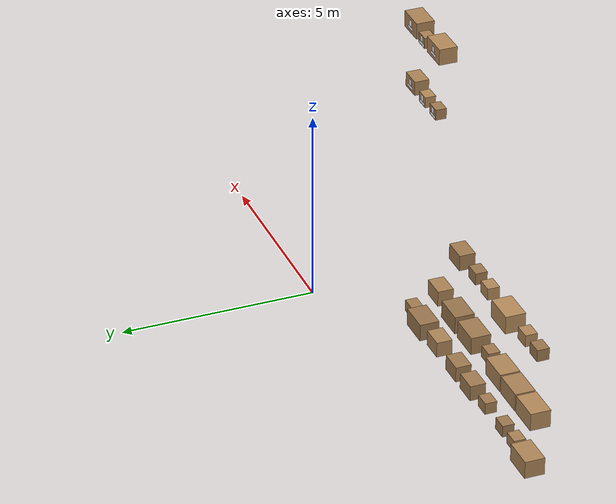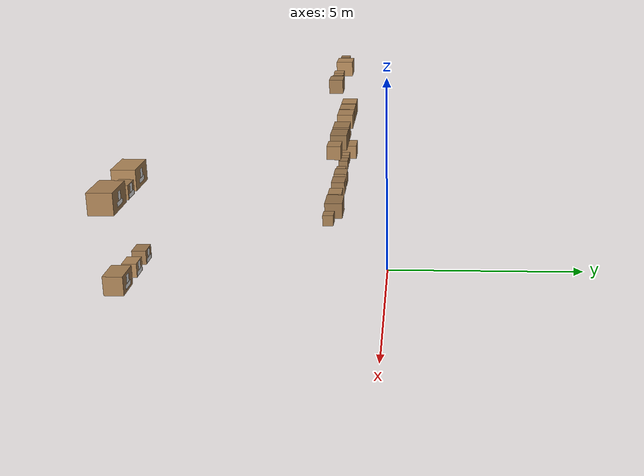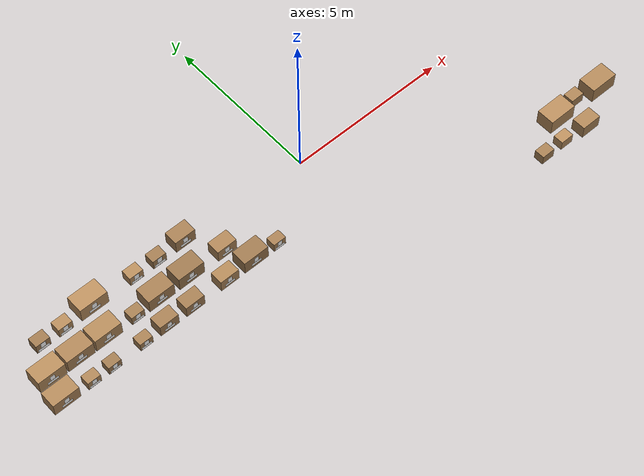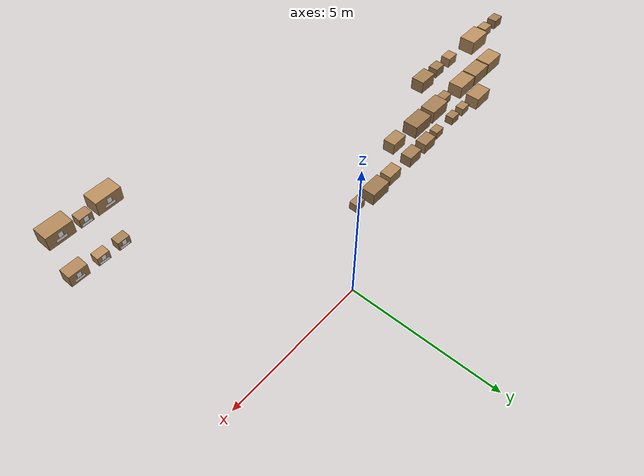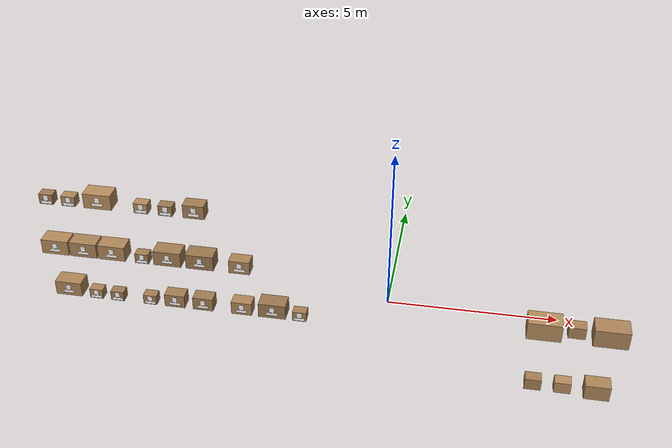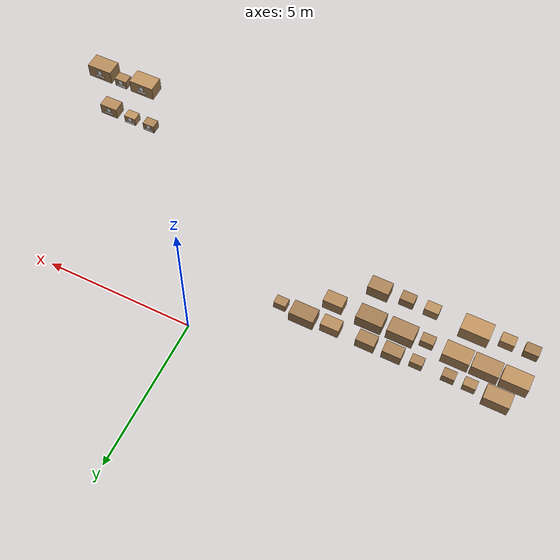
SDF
<sdf version="1.9">
 <world name="warehouse">
  <model name="inventory">
   <static>true</static>
   <link name="box_A_06_2_0">
    <visual name="body">
     <pose>4.05 -5.07 2 0 0 0</pose>
     <geometry><box><size>0.4 0.3 0.3</size></box></geometry>
     <material>
      <ambient>0.319156 0.244061 0.159578 1</ambient>
      <diffuse>0.638313 0.488122 0.319156 1</diffuse>
      <specular>0.05 0.05 0.05 1</specular>
      <pbr><metal><metalness>0.0</metalness><roughness>0.9</roughness></metal></pbr>
     </material>
    </visual>
    <collision name="body_c">
     <pose>4.05 -5.07 2 0 0 0</pose>
     <geometry><box><size>0.4 0.3 0.3</size></box></geometry>
    </collision>
    <visual name="label">
     <pose>4.05 -4.916 2.05 1.5708 0 3.14159</pose>
     <geometry>
      <mesh><uri>model://warehouse_assets/meshes/label_quad.obj</uri><scale>0.14 0.17 1</scale></mesh>
     </geometry>
     <material>
      <ambient>1 1 1 1</ambient>
      <diffuse>1 1 1 1</diffuse>
      <specular>0 0 0 1</specular>
      <pbr>
       <metal>
        <albedo_map>model://warehouse_assets/materials/textures/box_A0620.png</albedo_map>
        <metalness>0.0</metalness>
        <roughness>1.0</roughness>
       </metal>
      </pbr>
     </material>
    </visual>
    <visual name="placard">
     <pose>4.05 -4.916 1.91 1.5708 0 3.14159</pose>
     <geometry>
      <mesh><uri>model://warehouse_assets/meshes/label_quad.obj</uri><scale>0.32 0.09 1</scale></mesh>
     </geometry>
     <material>
      <ambient>1 1 1 1</ambient>
      <diffuse>1 1 1 1</diffuse>
      <specular>0 0 0 1</specular>
      <pbr>
       <metal>
        <albedo_map>model://warehouse_assets/materials/textures/placard_A0620.png</albedo_map>
        <metalness>0.0</metalness>
        <roughness>1.0</roughness>
       </metal>
      </pbr>
     </material>
    </visual>
   </link>
   <link name="box_A_06_2_1">
    <visual name="body">
     <pose>4.75 -5.07 2 0 0 0</pose>
     <geometry><box><size>0.4 0.3 0.3</size></box></geometry>
     <material>
      <ambient>0.356358 0.272509 0.178179 1</ambient>
      <diffuse>0.712716 0.545018 0.356358 1</diffuse>
      <specular>0.05 0.05 0.05 1</specular>
      <pbr><metal><metalness>0.0</metalness><roughness>0.9</roughness></metal></pbr>
     </material>
    </visual>
    <collision name="body_c">
     <pose>4.75 -5.07 2 0 0 0</pose>
     <geometry><box><size>0.4 0.3 0.3</size></box></geometry>
    </collision>
    <visual name="label">
     <pose>4.75 -4.916 2.05 1.5708 0 3.14159</pose>
     <geometry>
      <mesh><uri>model://warehouse_assets/meshes/label_quad.obj</uri><scale>0.14 0.17 1</scale></mesh>
     </geometry>
     <material>
      <ambient>1 1 1 1</ambient>
      <diffuse>1 1 1 1</diffuse>
      <specular>0 0 0 1</specular>
      <pbr>
       <metal>
        <albedo_map>model://warehouse_assets/materials/textures/box_A0621.png</albedo_map>
        <metalness>0.0</metalness>
        <roughness>1.0</roughness>
       </metal>
      </pbr>
     </material>
    </visual>
    <visual name="placard">
     <pose>4.75 -4.916 1.91 1.5708 0 3.14159</pose>
     <geometry>
      <mesh><uri>model://warehouse_assets/meshes/label_quad.obj</uri><scale>0.32 0.09 1</scale></mesh>
     </geometry>
     <material>
      <ambient>1 1 1 1</ambient>
      <diffuse>1 1 1 1</diffuse>
      <specular>0 0 0 1</specular>
      <pbr>
       <metal>
        <albedo_map>model://warehouse_assets/materials/textures/placard_A0621.png</albedo_map>
        <metalness>0.0</metalness>
        <roughness>1.0</roughness>
       </metal>
      </pbr>
     </material>
    </visual>
   </link>
   <link name="box_A_06_2_2">
    <visual name="body">
     <pose>5.55 -5.12 2.05 0 0 0</pose>
     <geometry><box><size>0.6 0.4 0.4</size></box></geometry>
     <material>
      <ambient>0.337333 0.25796 0.168666 1</ambient>
      <diffuse>0.674666 0.515921 0.337333 1</diffuse>
      <specular>0.05 0.05 0.05 1</specular>
      <pbr><metal><metalness>0.0</metalness><roughness>0.9</roughness></metal></pbr>
     </material>
    </visual>
    <collision name="body_c">
     <pose>5.55 -5.12 2.05 0 0 0</pose>
     <geometry><box><size>0.6 0.4 0.4</size></box></geometry>
    </collision>
    <visual name="label">
     <pose>5.55 -4.916 2.1 1.5708 0 3.14159</pose>
     <geometry>
      <mesh><uri>model://warehouse_assets/meshes/label_quad.obj</uri><scale>0.14 0.17 1</scale></mesh>
     </geometry>
     <material>
      <ambient>1 1 1 1</ambient>
      <diffuse>1 1 1 1</diffuse>
      <specular>0 0 0 1</specular>
      <pbr>
       <metal>
        <albedo_map>model://warehouse_assets/materials/textures/box_A0622.png</albedo_map>
        <metalness>0.0</metalness>
        <roughness>1.0</roughness>
       </metal>
      </pbr>
     </material>
    </visual>
    <visual name="placard">
     <pose>5.55 -4.916 1.96 1.5708 0 3.14159</pose>
     <geometry>
      <mesh><uri>model://warehouse_assets/meshes/label_quad.obj</uri><scale>0.32 0.09 1</scale></mesh>
     </geometry>
     <material>
      <ambient>1 1 1 1</ambient>
      <diffuse>1 1 1 1</diffuse>
      <specular>0 0 0 1</specular>
      <pbr>
       <metal>
        <albedo_map>model://warehouse_assets/materials/textures/placard_A0622.png</albedo_map>
        <metalness>0.0</metalness>
        <roughness>1.0</roughness>
       </metal>
      </pbr>
     </material>
    </visual>
   </link>
   <link name="box_A_06_3_0">
    <visual name="body">
     <pose>4.1 -5.17 3.775 0 0 0</pose>
     <geometry><box><size>0.8 0.5 0.45</size></box></geometry>
     <material>
      <ambient>0.354734 0.271267 0.177367 1</ambient>
      <diffuse>0.709467 0.542534 0.354734 1</diffuse>
      <specular>0.05 0.05 0.05 1</specular>
      <pbr><metal><metalness>0.0</metalness><roughness>0.9</roughness></metal></pbr>
     </material>
    </visual>
    <collision name="body_c">
     <pose>4.1 -5.17 3.775 0 0 0</pose>
     <geometry><box><size>0.8 0.5 0.45</size></box></geometry>
    </collision>
    <visual name="label">
     <pose>4.1 -4.916 3.825 1.5708 0 3.14159</pose>
     <geometry>
      <mesh><uri>model://warehouse_assets/meshes/label_quad.obj</uri><scale>0.14 0.17 1</scale></mesh>
     </geometry>
     <material>
      <ambient>1 1 1 1</ambient>
      <diffuse>1 1 1 1</diffuse>
      <specular>0 0 0 1</specular>
      <pbr>
       <metal>
        <albedo_map>model://warehouse_assets/materials/textures/box_A0630.png</albedo_map>
        <metalness>0.0</metalness>
        <roughness>1.0</roughness>
       </metal>
      </pbr>
     </material>
    </visual>
    <visual name="placard">
     <pose>4.1 -4.916 3.685 1.5708 0 3.14159</pose>
     <geometry>
      <mesh><uri>model://warehouse_assets/meshes/label_quad.obj</uri><scale>0.32 0.09 1</scale></mesh>
     </geometry>
     <material>
      <ambient>1 1 1 1</ambient>
      <diffuse>1 1 1 1</diffuse>
      <specular>0 0 0 1</specular>
      <pbr>
       <metal>
        <albedo_map>model://warehouse_assets/materials/textures/placard_A0630.png</albedo_map>
        <metalness>0.0</metalness>
        <roughness>1.0</roughness>
       </metal>
      </pbr>
     </material>
    </visual>
   </link>
   <link name="box_A_06_3_1">
    <visual name="body">
     <pose>4.85 -5.07 3.7 0 0 0</pose>
     <geometry><box><size>0.4 0.3 0.3</size></box></geometry>
     <material>
      <ambient>0.330614 0.252822 0.165307 1</ambient>
      <diffuse>0.661228 0.505645 0.330614 1</diffuse>
      <specular>0.05 0.05 0.05 1</specular>
      <pbr><metal><metalness>0.0</metalness><roughness>0.9</roughness></metal></pbr>
     </material>
    </visual>
    <collision name="body_c">
     <pose>4.85 -5.07 3.7 0 0 0</pose>
     <geometry><box><size>0.4 0.3 0.3</size></box></geometry>
    </collision>
    <visual name="label">
     <pose>4.85 -4.916 3.75 1.5708 0 3.14159</pose>
     <geometry>
      <mesh><uri>model://warehouse_assets/meshes/label_quad.obj</uri><scale>0.14 0.17 1</scale></mesh>
     </geometry>
     <material>
      <ambient>1 1 1 1</ambient>
      <diffuse>1 1 1 1</diffuse>
      <specular>0 0 0 1</specular>
      <pbr>
       <metal>
        <albedo_map>model://warehouse_assets/materials/textures/box_A0631.png</albedo_map>
        <metalness>0.0</metalness>
        <roughness>1.0</roughness>
       </metal>
      </pbr>
     </material>
    </visual>
    <visual name="placard">
     <pose>4.85 -4.916 3.61 1.5708 0 3.14159</pose>
     <geometry>
      <mesh><uri>model://warehouse_assets/meshes/label_quad.obj</uri><scale>0.32 0.09 1</scale></mesh>
     </geometry>
     <material>
      <ambient>1 1 1 1</ambient>
      <diffuse>1 1 1 1</diffuse>
      <specular>0 0 0 1</specular>
      <pbr>
       <metal>
        <albedo_map>model://warehouse_assets/materials/textures/placard_A0631.png</albedo_map>
        <metalness>0.0</metalness>
        <roughness>1.0</roughness>
       </metal>
      </pbr>
     </material>
    </visual>
   </link>
   <link name="box_A_06_3_2">
    <visual name="body">
     <pose>5.6 -5.17 3.775 0 0 0</pose>
     <geometry><box><size>0.8 0.5 0.45</size></box></geometry>
     <material>
      <ambient>0.339314 0.259476 0.169657 1</ambient>
      <diffuse>0.678629 0.518951 0.339314 1</diffuse>
      <specular>0.05 0.05 0.05 1</specular>
      <pbr><metal><metalness>0.0</metalness><roughness>0.9</roughness></metal></pbr>
     </material>
    </visual>
    <collision name="body_c">
     <pose>5.6 -5.17 3.775 0 0 0</pose>
     <geometry><box><size>0.8 0.5 0.45</size></box></geometry>
    </collision>
    <visual name="label">
     <pose>5.6 -4.916 3.825 1.5708 0 3.14159</pose>
     <geometry>
      <mesh><uri>model://warehouse_assets/meshes/label_quad.obj</uri><scale>0.14 0.17 1</scale></mesh>
     </geometry>
     <material>
      <ambient>1 1 1 1</ambient>
      <diffuse>1 1 1 1</diffuse>
      <specular>0 0 0 1</specular>
      <pbr>
       <metal>
        <albedo_map>model://warehouse_assets/materials/textures/box_A0632.png</albedo_map>
        <metalness>0.0</metalness>
        <roughness>1.0</roughness>
       </metal>
      </pbr>
     </material>
    </visual>
    <visual name="placard">
     <pose>5.6 -4.916 3.685 1.5708 0 3.14159</pose>
     <geometry>
      <mesh><uri>model://warehouse_assets/meshes/label_quad.obj</uri><scale>0.32 0.09 1</scale></mesh>
     </geometry>
     <material>
      <ambient>1 1 1 1</ambient>
      <diffuse>1 1 1 1</diffuse>
      <specular>0 0 0 1</specular>
      <pbr>
       <metal>
        <albedo_map>model://warehouse_assets/materials/textures/placard_A0632.png</albedo_map>
        <metalness>0.0</metalness>
        <roughness>1.0</roughness>
       </metal>
      </pbr>
     </material>
    </visual>
   </link>
   <link name="box_B_01_1_0">
    <visual name="body">
     <pose>-9.3 -1.63 0.625 0 0 0</pose>
     <geometry><box><size>0.8 0.5 0.45</size></box></geometry>
     <material>
      <ambient>0.341833 0.261401 0.170916 1</ambient>
      <diffuse>0.683665 0.522803 0.341833 1</diffuse>
      <specular>0.05 0.05 0.05 1</specular>
      <pbr><metal><metalness>0.0</metalness><roughness>0.9</roughness></metal></pbr>
     </material>
    </visual>
    <collision name="body_c">
     <pose>-9.3 -1.63 0.625 0 0 0</pose>
     <geometry><box><size>0.8 0.5 0.45</size></box></geometry>
    </collision>
    <visual name="label">
     <pose>-9.3 -1.884 0.675 1.5708 0 0</pose>
     <geometry>
      <mesh><uri>model://warehouse_assets/meshes/label_quad.obj</uri><scale>0.14 0.17 1</scale></mesh>
     </geometry>
     <material>
      <ambient>1 1 1 1</ambient>
      <diffuse>1 1 1 1</diffuse>
      <specular>0 0 0 1</specular>
      <pbr>
       <metal>
        <albedo_map>model://warehouse_assets/materials/textures/box_B0110.png</albedo_map>
        <metalness>0.0</metalness>
        <roughness>1.0</roughness>
       </metal>
      </pbr>
     </material>
    </visual>
    <visual name="placard">
     <pose>-9.3 -1.884 0.535 1.5708 0 0</pose>
     <geometry>
      <mesh><uri>model://warehouse_assets/meshes/label_quad.obj</uri><scale>0.32 0.09 1</scale></mesh>
     </geometry>
     <material>
      <ambient>1 1 1 1</ambient>
      <diffuse>1 1 1 1</diffuse>
      <specular>0 0 0 1</specular>
      <pbr>
       <metal>
        <albedo_map>model://warehouse_assets/materials/textures/placard_B0110.png</albedo_map>
        <metalness>0.0</metalness>
        <roughness>1.0</roughness>
       </metal>
      </pbr>
     </material>
    </visual>
   </link>
   <link name="box_B_01_1_1">
    <visual name="body">
     <pose>-8.45 -1.73 0.55 0 0 0</pose>
     <geometry><box><size>0.4 0.3 0.3</size></box></geometry>
     <material>
      <ambient>0.333604 0.255109 0.166802 1</ambient>
      <diffuse>0.667208 0.510218 0.333604 1</diffuse>
      <specular>0.05 0.05 0.05 1</specular>
      <pbr><metal><metalness>0.0</metalness><roughness>0.9</roughness></metal></pbr>
     </material>
    </visual>
    <collision name="body_c">
     <pose>-8.45 -1.73 0.55 0 0 0</pose>
     <geometry><box><size>0.4 0.3 0.3</size></box></geometry>
    </collision>
    <visual name="label">
     <pose>-8.45 -1.884 0.6 1.5708 0 0</pose>
     <geometry>
      <mesh><uri>model://warehouse_assets/meshes/label_quad.obj</uri><scale>0.14 0.17 1</scale></mesh>
     </geometry>
     <material>
      <ambient>1 1 1 1</ambient>
      <diffuse>1 1 1 1</diffuse>
      <specular>0 0 0 1</specular>
      <pbr>
       <metal>
        <albedo_map>model://warehouse_assets/materials/textures/box_B0111.png</albedo_map>
        <metalness>0.0</metalness>
        <roughness>1.0</roughness>
       </metal>
      </pbr>
     </material>
    </visual>
    <visual name="placard">
     <pose>-8.45 -1.884 0.46 1.5708 0 0</pose>
     <geometry>
      <mesh><uri>model://warehouse_assets/meshes/label_quad.obj</uri><scale>0.32 0.09 1</scale></mesh>
     </geometry>
     <material>
      <ambient>1 1 1 1</ambient>
      <diffuse>1 1 1 1</diffuse>
      <specular>0 0 0 1</specular>
      <pbr>
       <metal>
        <albedo_map>model://warehouse_assets/materials/textures/placard_B0111.png</albedo_map>
        <metalness>0.0</metalness>
        <roughness>1.0</roughness>
       </metal>
      </pbr>
     </material>
    </visual>
   </link>
   <link name="box_B_01_1_2">
    <visual name="body">
     <pose>-7.8 -1.73 0.55 0 0 0</pose>
     <geometry><box><size>0.4 0.3 0.3</size></box></geometry>
     <material>
      <ambient>0.307673 0.235279 0.153836 1</ambient>
      <diffuse>0.615345 0.470558 0.307673 1</diffuse>
      <specular>0.05 0.05 0.05 1</specular>
      <pbr><metal><metalness>0.0</metalness><roughness>0.9</roughness></metal></pbr>
     </material>
    </visual>
    <collision name="body_c">
     <pose>-7.8 -1.73 0.55 0 0 0</pose>
     <geometry><box><size>0.4 0.3 0.3</size></box></geometry>
    </collision>
    <visual name="label">
     <pose>-7.8 -1.884 0.6 1.5708 0 0</pose>
     <geometry>
      <mesh><uri>model://warehouse_assets/meshes/label_quad.obj</uri><scale>0.14 0.17 1</scale></mesh>
     </geometry>
     <material>
      <ambient>1 1 1 1</ambient>
      <diffuse>1 1 1 1</diffuse>
      <specular>0 0 0 1</specular>
      <pbr>
       <metal>
        <albedo_map>model://warehouse_assets/materials/textures/box_B0112.png</albedo_map>
        <metalness>0.0</metalness>
        <roughness>1.0</roughness>
       </metal>
      </pbr>
     </material>
    </visual>
    <visual name="placard">
     <pose>-7.8 -1.884 0.46 1.5708 0 0</pose>
     <geometry>
      <mesh><uri>model://warehouse_assets/meshes/label_quad.obj</uri><scale>0.32 0.09 1</scale></mesh>
     </geometry>
     <material>
      <ambient>1 1 1 1</ambient>
      <diffuse>1 1 1 1</diffuse>
      <specular>0 0 0 1</specular>
      <pbr>
       <metal>
        <albedo_map>model://warehouse_assets/materials/textures/placard_B0112.png</albedo_map>
        <metalness>0.0</metalness>
        <roughness>1.0</roughness>
       </metal>
      </pbr>
     </material>
    </visual>
   </link>
   <link name="box_B_01_2_0">
    <visual name="body">
     <pose>-9.5 -1.63 2.075 0 0 0</pose>
     <geometry><box><size>0.8 0.5 0.45</size></box></geometry>
     <material>
      <ambient>0.352524 0.269577 0.176262 1</ambient>
      <diffuse>0.705048 0.539155 0.352524 1</diffuse>
      <specular>0.05 0.05 0.05 1</specular>
      <pbr><metal><metalness>0.0</metalness><roughness>0.9</roughness></metal></pbr>
     </material>
    </visual>
    <collision name="body_c">
     <pose>-9.5 -1.63 2.075 0 0 0</pose>
     <geometry><box><size>0.8 0.5 0.45</size></box></geometry>
    </collision>
    <visual name="label">
     <pose>-9.5 -1.884 2.125 1.5708 0 0</pose>
     <geometry>
      <mesh><uri>model://warehouse_assets/meshes/label_quad.obj</uri><scale>0.14 0.17 1</scale></mesh>
     </geometry>
     <material>
      <ambient>1 1 1 1</ambient>
      <diffuse>1 1 1 1</diffuse>
      <specular>0 0 0 1</specular>
      <pbr>
       <metal>
        <albedo_map>model://warehouse_assets/materials/textures/box_B0120.png</albedo_map>
        <metalness>0.0</metalness>
        <roughness>1.0</roughness>
       </metal>
      </pbr>
     </material>
    </visual>
    <visual name="placard">
     <pose>-9.5 -1.884 1.985 1.5708 0 0</pose>
     <geometry>
      <mesh><uri>model://warehouse_assets/meshes/label_quad.obj</uri><scale>0.32 0.09 1</scale></mesh>
     </geometry>
     <material>
      <ambient>1 1 1 1</ambient>
      <diffuse>1 1 1 1</diffuse>
      <specular>0 0 0 1</specular>
      <pbr>
       <metal>
        <albedo_map>model://warehouse_assets/materials/textures/placard_B0120.png</albedo_map>
        <metalness>0.0</metalness>
        <roughness>1.0</roughness>
       </metal>
      </pbr>
     </material>
    </visual>
   </link>
   <link name="box_B_01_2_1">
    <visual name="body">
     <pose>-8.65 -1.63 2.075 0 0 0</pose>
     <geometry><box><size>0.8 0.5 0.45</size></box></geometry>
     <material>
      <ambient>0.334331 0.255665 0.167165 1</ambient>
      <diffuse>0.668661 0.511329 0.334331 1</diffuse>
      <specular>0.05 0.05 0.05 1</specular>
      <pbr><metal><metalness>0.0</metalness><roughness>0.9</roughness></metal></pbr>
     </material>
    </visual>
    <collision name="body_c">
     <pose>-8.65 -1.63 2.075 0 0 0</pose>
     <geometry><box><size>0.8 0.5 0.45</size></box></geometry>
    </collision>
    <visual name="label">
     <pose>-8.65 -1.884 2.125 1.5708 0 0</pose>
     <geometry>
      <mesh><uri>model://warehouse_assets/meshes/label_quad.obj</uri><scale>0.14 0.17 1</scale></mesh>
     </geometry>
     <material>
      <ambient>1 1 1 1</ambient>
      <diffuse>1 1 1 1</diffuse>
      <specular>0 0 0 1</specular>
      <pbr>
       <metal>
        <albedo_map>model://warehouse_assets/materials/textures/box_B0121.png</albedo_map>
        <metalness>0.0</metalness>
        <roughness>1.0</roughness>
       </metal>
      </pbr>
     </material>
    </visual>
    <visual name="placard">
     <pose>-8.65 -1.884 1.985 1.5708 0 0</pose>
     <geometry>
      <mesh><uri>model://warehouse_assets/meshes/label_quad.obj</uri><scale>0.32 0.09 1</scale></mesh>
     </geometry>
     <material>
      <ambient>1 1 1 1</ambient>
      <diffuse>1 1 1 1</diffuse>
      <specular>0 0 0 1</specular>
      <pbr>
       <metal>
        <albedo_map>model://warehouse_assets/materials/textures/placard_B0121.png</albedo_map>
        <metalness>0.0</metalness>
        <roughness>1.0</roughness>
       </metal>
      </pbr>
     </material>
    </visual>
   </link>
   <link name="box_B_01_2_2">
    <visual name="body">
     <pose>-7.8 -1.63 2.075 0 0 0</pose>
     <geometry><box><size>0.8 0.5 0.45</size></box></geometry>
     <material>
      <ambient>0.343984 0.263047 0.171992 1</ambient>
      <diffuse>0.687968 0.526093 0.343984 1</diffuse>
      <specular>0.05 0.05 0.05 1</specular>
      <pbr><metal><metalness>0.0</metalness><roughness>0.9</roughness></metal></pbr>
     </material>
    </visual>
    <collision name="body_c">
     <pose>-7.8 -1.63 2.075 0 0 0</pose>
     <geometry><box><size>0.8 0.5 0.45</size></box></geometry>
    </collision>
    <visual name="label">
     <pose>-7.8 -1.884 2.125 1.5708 0 0</pose>
     <geometry>
      <mesh><uri>model://warehouse_assets/meshes/label_quad.obj</uri><scale>0.14 0.17 1</scale></mesh>
     </geometry>
     <material>
      <ambient>1 1 1 1</ambient>
      <diffuse>1 1 1 1</diffuse>
      <specular>0 0 0 1</specular>
      <pbr>
       <metal>
        <albedo_map>model://warehouse_assets/materials/textures/box_B0122.png</albedo_map>
        <metalness>0.0</metalness>
        <roughness>1.0</roughness>
       </metal>
      </pbr>
     </material>
    </visual>
    <visual name="placard">
     <pose>-7.8 -1.884 1.985 1.5708 0 0</pose>
     <geometry>
      <mesh><uri>model://warehouse_assets/meshes/label_quad.obj</uri><scale>0.32 0.09 1</scale></mesh>
     </geometry>
     <material>
      <ambient>1 1 1 1</ambient>
      <diffuse>1 1 1 1</diffuse>
      <specular>0 0 0 1</specular>
      <pbr>
       <metal>
        <albedo_map>model://warehouse_assets/materials/textures/placard_B0122.png</albedo_map>
        <metalness>0.0</metalness>
        <roughness>1.0</roughness>
       </metal>
      </pbr>
     </material>
    </visual>
   </link>
   <link name="box_B_01_3_0">
    <visual name="body">
     <pose>-9.5 -1.73 3.7 0 0 0</pose>
     <geometry><box><size>0.4 0.3 0.3</size></box></geometry>
     <material>
      <ambient>0.306503 0.234384 0.153251 1</ambient>
      <diffuse>0.613005 0.468769 0.306503 1</diffuse>
      <specular>0.05 0.05 0.05 1</specular>
      <pbr><metal><metalness>0.0</metalness><roughness>0.9</roughness></metal></pbr>
     </material>
    </visual>
    <collision name="body_c">
     <pose>-9.5 -1.73 3.7 0 0 0</pose>
     <geometry><box><size>0.4 0.3 0.3</size></box></geometry>
    </collision>
    <visual name="label">
     <pose>-9.5 -1.884 3.75 1.5708 0 0</pose>
     <geometry>
      <mesh><uri>model://warehouse_assets/meshes/label_quad.obj</uri><scale>0.14 0.17 1</scale></mesh>
     </geometry>
     <material>
      <ambient>1 1 1 1</ambient>
      <diffuse>1 1 1 1</diffuse>
      <specular>0 0 0 1</specular>
      <pbr>
       <metal>
        <albedo_map>model://warehouse_assets/materials/textures/box_B0130.png</albedo_map>
        <metalness>0.0</metalness>
        <roughness>1.0</roughness>
       </metal>
      </pbr>
     </material>
    </visual>
    <visual name="placard">
     <pose>-9.5 -1.884 3.61 1.5708 0 0</pose>
     <geometry>
      <mesh><uri>model://warehouse_assets/meshes/label_quad.obj</uri><scale>0.32 0.09 1</scale></mesh>
     </geometry>
     <material>
      <ambient>1 1 1 1</ambient>
      <diffuse>1 1 1 1</diffuse>
      <specular>0 0 0 1</specular>
      <pbr>
       <metal>
        <albedo_map>model://warehouse_assets/materials/textures/placard_B0130.png</albedo_map>
        <metalness>0.0</metalness>
        <roughness>1.0</roughness>
       </metal>
      </pbr>
     </material>
    </visual>
   </link>
   <link name="box_B_01_3_1">
    <visual name="body">
     <pose>-8.85 -1.73 3.7 0 0 0</pose>
     <geometry><box><size>0.4 0.3 0.3</size></box></geometry>
     <material>
      <ambient>0.347817 0.265977 0.173908 1</ambient>
      <diffuse>0.695633 0.531955 0.347817 1</diffuse>
      <specular>0.05 0.05 0.05 1</specular>
      <pbr><metal><metalness>0.0</metalness><roughness>0.9</roughness></metal></pbr>
     </material>
    </visual>
    <collision name="body_c">
     <pose>-8.85 -1.73 3.7 0 0 0</pose>
     <geometry><box><size>0.4 0.3 0.3</size></box></geometry>
    </collision>
    <visual name="label">
     <pose>-8.85 -1.884 3.75 1.5708 0 0</pose>
     <geometry>
      <mesh><uri>model://warehouse_assets/meshes/label_quad.obj</uri><scale>0.14 0.17 1</scale></mesh>
     </geometry>
     <material>
      <ambient>1 1 1 1</ambient>
      <diffuse>1 1 1 1</diffuse>
      <specular>0 0 0 1</specular>
      <pbr>
       <metal>
        <albedo_map>model://warehouse_assets/materials/textures/box_B0131.png</albedo_map>
        <metalness>0.0</metalness>
        <roughness>1.0</roughness>
       </metal>
      </pbr>
     </material>
    </visual>
    <visual name="placard">
     <pose>-8.85 -1.884 3.61 1.5708 0 0</pose>
     <geometry>
      <mesh><uri>model://warehouse_assets/meshes/label_quad.obj</uri><scale>0.32 0.09 1</scale></mesh>
     </geometry>
     <material>
      <ambient>1 1 1 1</ambient>
      <diffuse>1 1 1 1</diffuse>
      <specular>0 0 0 1</specular>
      <pbr>
       <metal>
        <albedo_map>model://warehouse_assets/materials/textures/placard_B0131.png</albedo_map>
        <metalness>0.0</metalness>
        <roughness>1.0</roughness>
       </metal>
      </pbr>
     </material>
    </visual>
   </link>
   <link name="box_B_01_3_2">
    <visual name="body">
     <pose>-8 -1.63 3.775 0 0 0</pose>
     <geometry><box><size>0.8 0.5 0.45</size></box></geometry>
     <material>
      <ambient>0.359392 0.27483 0.179696 1</ambient>
      <diffuse>0.718785 0.549659 0.359392 1</diffuse>
      <specular>0.05 0.05 0.05 1</specular>
      <pbr><metal><metalness>0.0</metalness><roughness>0.9</roughness></metal></pbr>
     </material>
    </visual>
    <collision name="body_c">
     <pose>-8 -1.63 3.775 0 0 0</pose>
     <geometry><box><size>0.8 0.5 0.45</size></box></geometry>
    </collision>
    <visual name="label">
     <pose>-8 -1.884 3.825 1.5708 0 0</pose>
     <geometry>
      <mesh><uri>model://warehouse_assets/meshes/label_quad.obj</uri><scale>0.14 0.17 1</scale></mesh>
     </geometry>
     <material>
      <ambient>1 1 1 1</ambient>
      <diffuse>1 1 1 1</diffuse>
      <specular>0 0 0 1</specular>
      <pbr>
       <metal>
        <albedo_map>model://warehouse_assets/materials/textures/box_B0132.png</albedo_map>
        <metalness>0.0</metalness>
        <roughness>1.0</roughness>
       </metal>
      </pbr>
     </material>
    </visual>
    <visual name="placard">
     <pose>-8 -1.884 3.685 1.5708 0 0</pose>
     <geometry>
      <mesh><uri>model://warehouse_assets/meshes/label_quad.obj</uri><scale>0.32 0.09 1</scale></mesh>
     </geometry>
     <material>
      <ambient>1 1 1 1</ambient>
      <diffuse>1 1 1 1</diffuse>
      <specular>0 0 0 1</specular>
      <pbr>
       <metal>
        <albedo_map>model://warehouse_assets/materials/textures/placard_B0132.png</albedo_map>
        <metalness>0.0</metalness>
        <roughness>1.0</roughness>
       </metal>
      </pbr>
     </material>
    </visual>
   </link>
   <link name="box_B_02_1_0">
    <visual name="body">
     <pose>-6.8 -1.73 0.55 0 0 0</pose>
     <geometry><box><size>0.4 0.3 0.3</size></box></geometry>
     <material>
      <ambient>0.319652 0.24444 0.159826 1</ambient>
      <diffuse>0.639304 0.48888 0.319652 1</diffuse>
      <specular>0.05 0.05 0.05 1</specular>
      <pbr><metal><metalness>0.0</metalness><roughness>0.9</roughness></metal></pbr>
     </material>
    </visual>
    <collision name="body_c">
     <pose>-6.8 -1.73 0.55 0 0 0</pose>
     <geometry><box><size>0.4 0.3 0.3</size></box></geometry>
    </collision>
    <visual name="label">
     <pose>-6.8 -1.884 0.6 1.5708 0 0</pose>
     <geometry>
      <mesh><uri>model://warehouse_assets/meshes/label_quad.obj</uri><scale>0.14 0.17 1</scale></mesh>
     </geometry>
     <material>
      <ambient>1 1 1 1</ambient>
      <diffuse>1 1 1 1</diffuse>
      <specular>0 0 0 1</specular>
      <pbr>
       <metal>
        <albedo_map>model://warehouse_assets/materials/textures/box_B0210.png</albedo_map>
        <metalness>0.0</metalness>
        <roughness>1.0</roughness>
       </metal>
      </pbr>
     </material>
    </visual>
    <visual name="placard">
     <pose>-6.8 -1.884 0.46 1.5708 0 0</pose>
     <geometry>
      <mesh><uri>model://warehouse_assets/meshes/label_quad.obj</uri><scale>0.32 0.09 1</scale></mesh>
     </geometry>
     <material>
      <ambient>1 1 1 1</ambient>
      <diffuse>1 1 1 1</diffuse>
      <specular>0 0 0 1</specular>
      <pbr>
       <metal>
        <albedo_map>model://warehouse_assets/materials/textures/placard_B0210.png</albedo_map>
        <metalness>0.0</metalness>
        <roughness>1.0</roughness>
       </metal>
      </pbr>
     </material>
    </visual>
   </link>
   <link name="box_B_02_1_1">
    <visual name="body">
     <pose>-6.05 -1.68 0.6 0 0 0</pose>
     <geometry><box><size>0.6 0.4 0.4</size></box></geometry>
     <material>
      <ambient>0.317145 0.242523 0.158573 1</ambient>
      <diffuse>0.63429 0.485046 0.317145 1</diffuse>
      <specular>0.05 0.05 0.05 1</specular>
      <pbr><metal><metalness>0.0</metalness><roughness>0.9</roughness></metal></pbr>
     </material>
    </visual>
    <collision name="body_c">
     <pose>-6.05 -1.68 0.6 0 0 0</pose>
     <geometry><box><size>0.6 0.4 0.4</size></box></geometry>
    </collision>
    <visual name="label">
     <pose>-6.05 -1.884 0.65 1.5708 0 0</pose>
     <geometry>
      <mesh><uri>model://warehouse_assets/meshes/label_quad.obj</uri><scale>0.14 0.17 1</scale></mesh>
     </geometry>
     <material>
      <ambient>1 1 1 1</ambient>
      <diffuse>1 1 1 1</diffuse>
      <specular>0 0 0 1</specular>
      <pbr>
       <metal>
        <albedo_map>model://warehouse_assets/materials/textures/box_B0211.png</albedo_map>
        <metalness>0.0</metalness>
        <roughness>1.0</roughness>
       </metal>
      </pbr>
     </material>
    </visual>
    <visual name="placard">
     <pose>-6.05 -1.884 0.51 1.5708 0 0</pose>
     <geometry>
      <mesh><uri>model://warehouse_assets/meshes/label_quad.obj</uri><scale>0.32 0.09 1</scale></mesh>
     </geometry>
     <material>
      <ambient>1 1 1 1</ambient>
      <diffuse>1 1 1 1</diffuse>
      <specular>0 0 0 1</specular>
      <pbr>
       <metal>
        <albedo_map>model://warehouse_assets/materials/textures/placard_B0211.png</albedo_map>
        <metalness>0.0</metalness>
        <roughness>1.0</roughness>
       </metal>
      </pbr>
     </material>
    </visual>
   </link>
   <link name="box_B_02_1_2">
    <visual name="body">
     <pose>-5.2 -1.68 0.6 0 0 0</pose>
     <geometry><box><size>0.6 0.4 0.4</size></box></geometry>
     <material>
      <ambient>0.313292 0.239577 0.156646 1</ambient>
      <diffuse>0.626585 0.479153 0.313292 1</diffuse>
      <specular>0.05 0.05 0.05 1</specular>
      <pbr><metal><metalness>0.0</metalness><roughness>0.9</roughness></metal></pbr>
     </material>
    </visual>
    <collision name="body_c">
     <pose>-5.2 -1.68 0.6 0 0 0</pose>
     <geometry><box><size>0.6 0.4 0.4</size></box></geometry>
    </collision>
    <visual name="label">
     <pose>-5.2 -1.884 0.65 1.5708 0 0</pose>
     <geometry>
      <mesh><uri>model://warehouse_assets/meshes/label_quad.obj</uri><scale>0.14 0.17 1</scale></mesh>
     </geometry>
     <material>
      <ambient>1 1 1 1</ambient>
      <diffuse>1 1 1 1</diffuse>
      <specular>0 0 0 1</specular>
      <pbr>
       <metal>
        <albedo_map>model://warehouse_assets/materials/textures/box_B0212.png</albedo_map>
        <metalness>0.0</metalness>
        <roughness>1.0</roughness>
       </metal>
      </pbr>
     </material>
    </visual>
    <visual name="placard">
     <pose>-5.2 -1.884 0.51 1.5708 0 0</pose>
     <geometry>
      <mesh><uri>model://warehouse_assets/meshes/label_quad.obj</uri><scale>0.32 0.09 1</scale></mesh>
     </geometry>
     <material>
      <ambient>1 1 1 1</ambient>
      <diffuse>1 1 1 1</diffuse>
      <specular>0 0 0 1</specular>
      <pbr>
       <metal>
        <albedo_map>model://warehouse_assets/materials/textures/placard_B0212.png</albedo_map>
        <metalness>0.0</metalness>
        <roughness>1.0</roughness>
       </metal>
      </pbr>
     </material>
    </visual>
   </link>
   <link name="box_B_02_2_0">
    <visual name="body">
     <pose>-6.9 -1.73 2 0 0 0</pose>
     <geometry><box><size>0.4 0.3 0.3</size></box></geometry>
     <material>
      <ambient>0.315952 0.24161 0.157976 1</ambient>
      <diffuse>0.631904 0.483221 0.315952 1</diffuse>
      <specular>0.05 0.05 0.05 1</specular>
      <pbr><metal><metalness>0.0</metalness><roughness>0.9</roughness></metal></pbr>
     </material>
    </visual>
    <collision name="body_c">
     <pose>-6.9 -1.73 2 0 0 0</pose>
     <geometry><box><size>0.4 0.3 0.3</size></box></geometry>
    </collision>
    <visual name="label">
     <pose>-6.9 -1.884 2.05 1.5708 0 0</pose>
     <geometry>
      <mesh><uri>model://warehouse_assets/meshes/label_quad.obj</uri><scale>0.14 0.17 1</scale></mesh>
     </geometry>
     <material>
      <ambient>1 1 1 1</ambient>
      <diffuse>1 1 1 1</diffuse>
      <specular>0 0 0 1</specular>
      <pbr>
       <metal>
        <albedo_map>model://warehouse_assets/materials/textures/box_B0220.png</albedo_map>
        <metalness>0.0</metalness>
        <roughness>1.0</roughness>
       </metal>
      </pbr>
     </material>
    </visual>
    <visual name="placard">
     <pose>-6.9 -1.884 1.91 1.5708 0 0</pose>
     <geometry>
      <mesh><uri>model://warehouse_assets/meshes/label_quad.obj</uri><scale>0.32 0.09 1</scale></mesh>
     </geometry>
     <material>
      <ambient>1 1 1 1</ambient>
      <diffuse>1 1 1 1</diffuse>
      <specular>0 0 0 1</specular>
      <pbr>
       <metal>
        <albedo_map>model://warehouse_assets/materials/textures/placard_B0220.png</albedo_map>
        <metalness>0.0</metalness>
        <roughness>1.0</roughness>
       </metal>
      </pbr>
     </material>
    </visual>
   </link>
   <link name="box_B_02_2_1">
    <visual name="body">
     <pose>-6.15 -1.63 2.075 0 0 0</pose>
     <geometry><box><size>0.8 0.5 0.45</size></box></geometry>
     <material>
      <ambient>0.316963 0.242383 0.158481 1</ambient>
      <diffuse>0.633925 0.484766 0.316963 1</diffuse>
      <specular>0.05 0.05 0.05 1</specular>
      <pbr><metal><metalness>0.0</metalness><roughness>0.9</roughness></metal></pbr>
     </material>
    </visual>
    <collision name="body_c">
     <pose>-6.15 -1.63 2.075 0 0 0</pose>
     <geometry><box><size>0.8 0.5 0.45</size></box></geometry>
    </collision>
    <visual name="label">
     <pose>-6.15 -1.884 2.125 1.5708 0 0</pose>
     <geometry>
      <mesh><uri>model://warehouse_assets/meshes/label_quad.obj</uri><scale>0.14 0.17 1</scale></mesh>
     </geometry>
     <material>
      <ambient>1 1 1 1</ambient>
      <diffuse>1 1 1 1</diffuse>
      <specular>0 0 0 1</specular>
      <pbr>
       <metal>
        <albedo_map>model://warehouse_assets/materials/textures/box_B0221.png</albedo_map>
        <metalness>0.0</metalness>
        <roughness>1.0</roughness>
       </metal>
      </pbr>
     </material>
    </visual>
    <visual name="placard">
     <pose>-6.15 -1.884 1.985 1.5708 0 0</pose>
     <geometry>
      <mesh><uri>model://warehouse_assets/meshes/label_quad.obj</uri><scale>0.32 0.09 1</scale></mesh>
     </geometry>
     <material>
      <ambient>1 1 1 1</ambient>
      <diffuse>1 1 1 1</diffuse>
      <specular>0 0 0 1</specular>
      <pbr>
       <metal>
        <albedo_map>model://warehouse_assets/materials/textures/placard_B0221.png</albedo_map>
        <metalness>0.0</metalness>
        <roughness>1.0</roughness>
       </metal>
      </pbr>
     </material>
    </visual>
   </link>
   <link name="box_B_02_2_2">
    <visual name="body">
     <pose>-5.2 -1.63 2.075 0 0 0</pose>
     <geometry><box><size>0.8 0.5 0.45</size></box></geometry>
     <material>
      <ambient>0.300274 0.229622 0.150137 1</ambient>
      <diffuse>0.600549 0.459243 0.300274 1</diffuse>
      <specular>0.05 0.05 0.05 1</specular>
      <pbr><metal><metalness>0.0</metalness><roughness>0.9</roughness></metal></pbr>
     </material>
    </visual>
    <collision name="body_c">
     <pose>-5.2 -1.63 2.075 0 0 0</pose>
     <geometry><box><size>0.8 0.5 0.45</size></box></geometry>
    </collision>
    <visual name="label">
     <pose>-5.2 -1.884 2.125 1.5708 0 0</pose>
     <geometry>
      <mesh><uri>model://warehouse_assets/meshes/label_quad.obj</uri><scale>0.14 0.17 1</scale></mesh>
     </geometry>
     <material>
      <ambient>1 1 1 1</ambient>
      <diffuse>1 1 1 1</diffuse>
      <specular>0 0 0 1</specular>
      <pbr>
       <metal>
        <albedo_map>model://warehouse_assets/materials/textures/box_B0222.png</albedo_map>
        <metalness>0.0</metalness>
        <roughness>1.0</roughness>
       </metal>
      </pbr>
     </material>
    </visual>
    <visual name="placard">
     <pose>-5.2 -1.884 1.985 1.5708 0 0</pose>
     <geometry>
      <mesh><uri>model://warehouse_assets/meshes/label_quad.obj</uri><scale>0.32 0.09 1</scale></mesh>
     </geometry>
     <material>
      <ambient>1 1 1 1</ambient>
      <diffuse>1 1 1 1</diffuse>
      <specular>0 0 0 1</specular>
      <pbr>
       <metal>
        <albedo_map>model://warehouse_assets/materials/textures/placard_B0222.png</albedo_map>
        <metalness>0.0</metalness>
        <roughness>1.0</roughness>
       </metal>
      </pbr>
     </material>
    </visual>
   </link>
   <link name="box_B_02_3_0">
    <visual name="body">
     <pose>-6.75 -1.73 3.7 0 0 0</pose>
     <geometry><box><size>0.4 0.3 0.3</size></box></geometry>
     <material>
      <ambient>0.350046 0.267683 0.175023 1</ambient>
      <diffuse>0.700093 0.535365 0.350046 1</diffuse>
      <specular>0.05 0.05 0.05 1</specular>
      <pbr><metal><metalness>0.0</metalness><roughness>0.9</roughness></metal></pbr>
     </material>
    </visual>
    <collision name="body_c">
     <pose>-6.75 -1.73 3.7 0 0 0</pose>
     <geometry><box><size>0.4 0.3 0.3</size></box></geometry>
    </collision>
    <visual name="label">
     <pose>-6.75 -1.884 3.75 1.5708 0 0</pose>
     <geometry>
      <mesh><uri>model://warehouse_assets/meshes/label_quad.obj</uri><scale>0.14 0.17 1</scale></mesh>
     </geometry>
     <material>
      <ambient>1 1 1 1</ambient>
      <diffuse>1 1 1 1</diffuse>
      <specular>0 0 0 1</specular>
      <pbr>
       <metal>
        <albedo_map>model://warehouse_assets/materials/textures/box_B0230.png</albedo_map>
        <metalness>0.0</metalness>
        <roughness>1.0</roughness>
       </metal>
      </pbr>
     </material>
    </visual>
    <visual name="placard">
     <pose>-6.75 -1.884 3.61 1.5708 0 0</pose>
     <geometry>
      <mesh><uri>model://warehouse_assets/meshes/label_quad.obj</uri><scale>0.32 0.09 1</scale></mesh>
     </geometry>
     <material>
      <ambient>1 1 1 1</ambient>
      <diffuse>1 1 1 1</diffuse>
      <specular>0 0 0 1</specular>
      <pbr>
       <metal>
        <albedo_map>model://warehouse_assets/materials/textures/placard_B0230.png</albedo_map>
        <metalness>0.0</metalness>
        <roughness>1.0</roughness>
       </metal>
      </pbr>
     </material>
    </visual>
   </link>
   <link name="box_B_02_3_1">
    <visual name="body">
     <pose>-6.05 -1.73 3.7 0 0 0</pose>
     <geometry><box><size>0.4 0.3 0.3</size></box></geometry>
     <material>
      <ambient>0.309509 0.236683 0.154754 1</ambient>
      <diffuse>0.619017 0.473366 0.309509 1</diffuse>
      <specular>0.05 0.05 0.05 1</specular>
      <pbr><metal><metalness>0.0</metalness><roughness>0.9</roughness></metal></pbr>
     </material>
    </visual>
    <collision name="body_c">
     <pose>-6.05 -1.73 3.7 0 0 0</pose>
     <geometry><box><size>0.4 0.3 0.3</size></box></geometry>
    </collision>
    <visual name="label">
     <pose>-6.05 -1.884 3.75 1.5708 0 0</pose>
     <geometry>
      <mesh><uri>model://warehouse_assets/meshes/label_quad.obj</uri><scale>0.14 0.17 1</scale></mesh>
     </geometry>
     <material>
      <ambient>1 1 1 1</ambient>
      <diffuse>1 1 1 1</diffuse>
      <specular>0 0 0 1</specular>
      <pbr>
       <metal>
        <albedo_map>model://warehouse_assets/materials/textures/box_B0231.png</albedo_map>
        <metalness>0.0</metalness>
        <roughness>1.0</roughness>
       </metal>
      </pbr>
     </material>
    </visual>
    <visual name="placard">
     <pose>-6.05 -1.884 3.61 1.5708 0 0</pose>
     <geometry>
      <mesh><uri>model://warehouse_assets/meshes/label_quad.obj</uri><scale>0.32 0.09 1</scale></mesh>
     </geometry>
     <material>
      <ambient>1 1 1 1</ambient>
      <diffuse>1 1 1 1</diffuse>
      <specular>0 0 0 1</specular>
      <pbr>
       <metal>
        <albedo_map>model://warehouse_assets/materials/textures/placard_B0231.png</albedo_map>
        <metalness>0.0</metalness>
        <roughness>1.0</roughness>
       </metal>
      </pbr>
     </material>
    </visual>
   </link>
   <link name="box_B_02_3_2">
    <visual name="body">
     <pose>-5.25 -1.68 3.75 0 0 0</pose>
     <geometry><box><size>0.6 0.4 0.4</size></box></geometry>
     <material>
      <ambient>0.317615 0.242882 0.158808 1</ambient>
      <diffuse>0.63523 0.485764 0.317615 1</diffuse>
      <specular>0.05 0.05 0.05 1</specular>
      <pbr><metal><metalness>0.0</metalness><roughness>0.9</roughness></metal></pbr>
     </material>
    </visual>
    <collision name="body_c">
     <pose>-5.25 -1.68 3.75 0 0 0</pose>
     <geometry><box><size>0.6 0.4 0.4</size></box></geometry>
    </collision>
    <visual name="label">
     <pose>-5.25 -1.884 3.8 1.5708 0 0</pose>
     <geometry>
      <mesh><uri>model://warehouse_assets/meshes/label_quad.obj</uri><scale>0.14 0.17 1</scale></mesh>
     </geometry>
     <material>
      <ambient>1 1 1 1</ambient>
      <diffuse>1 1 1 1</diffuse>
      <specular>0 0 0 1</specular>
      <pbr>
       <metal>
        <albedo_map>model://warehouse_assets/materials/textures/box_B0232.png</albedo_map>
        <metalness>0.0</metalness>
        <roughness>1.0</roughness>
       </metal>
      </pbr>
     </material>
    </visual>
    <visual name="placard">
     <pose>-5.25 -1.884 3.66 1.5708 0 0</pose>
     <geometry>
      <mesh><uri>model://warehouse_assets/meshes/label_quad.obj</uri><scale>0.32 0.09 1</scale></mesh>
     </geometry>
     <material>
      <ambient>1 1 1 1</ambient>
      <diffuse>1 1 1 1</diffuse>
      <specular>0 0 0 1</specular>
      <pbr>
       <metal>
        <albedo_map>model://warehouse_assets/materials/textures/placard_B0232.png</albedo_map>
        <metalness>0.0</metalness>
        <roughness>1.0</roughness>
       </metal>
      </pbr>
     </material>
    </visual>
   </link>
   <link name="box_B_03_1_0">
    <visual name="body">
     <pose>-4.05 -1.68 0.6 0 0 0</pose>
     <geometry><box><size>0.6 0.4 0.4</size></box></geometry>
     <material>
      <ambient>0.341249 0.260955 0.170625 1</ambient>
      <diffuse>0.682499 0.521911 0.341249 1</diffuse>
      <specular>0.05 0.05 0.05 1</specular>
      <pbr><metal><metalness>0.0</metalness><roughness>0.9</roughness></metal></pbr>
     </material>
    </visual>
    <collision name="body_c">
     <pose>-4.05 -1.68 0.6 0 0 0</pose>
     <geometry><box><size>0.6 0.4 0.4</size></box></geometry>
    </collision>
    <visual name="label">
     <pose>-4.05 -1.884 0.65 1.5708 0 0</pose>
     <geometry>
      <mesh><uri>model://warehouse_assets/meshes/label_quad.obj</uri><scale>0.14 0.17 1</scale></mesh>
     </geometry>
     <material>
      <ambient>1 1 1 1</ambient>
      <diffuse>1 1 1 1</diffuse>
      <specular>0 0 0 1</specular>
      <pbr>
       <metal>
        <albedo_map>model://warehouse_assets/materials/textures/box_B0310.png</albedo_map>
        <metalness>0.0</metalness>
        <roughness>1.0</roughness>
       </metal>
      </pbr>
     </material>
    </visual>
    <visual name="placard">
     <pose>-4.05 -1.884 0.51 1.5708 0 0</pose>
     <geometry>
      <mesh><uri>model://warehouse_assets/meshes/label_quad.obj</uri><scale>0.32 0.09 1</scale></mesh>
     </geometry>
     <material>
      <ambient>1 1 1 1</ambient>
      <diffuse>1 1 1 1</diffuse>
      <specular>0 0 0 1</specular>
      <pbr>
       <metal>
        <albedo_map>model://warehouse_assets/materials/textures/placard_B0310.png</albedo_map>
        <metalness>0.0</metalness>
        <roughness>1.0</roughness>
       </metal>
      </pbr>
     </material>
    </visual>
   </link>
   <link name="box_B_03_1_1">
    <visual name="body">
     <pose>-3.15 -1.63 0.625 0 0 0</pose>
     <geometry><box><size>0.8 0.5 0.45</size></box></geometry>
     <material>
      <ambient>0.303444 0.232045 0.151722 1</ambient>
      <diffuse>0.606888 0.464091 0.303444 1</diffuse>
      <specular>0.05 0.05 0.05 1</specular>
      <pbr><metal><metalness>0.0</metalness><roughness>0.9</roughness></metal></pbr>
     </material>
    </visual>
    <collision name="body_c">
     <pose>-3.15 -1.63 0.625 0 0 0</pose>
     <geometry><box><size>0.8 0.5 0.45</size></box></geometry>
    </collision>
    <visual name="label">
     <pose>-3.15 -1.884 0.675 1.5708 0 0</pose>
     <geometry>
      <mesh><uri>model://warehouse_assets/meshes/label_quad.obj</uri><scale>0.14 0.17 1</scale></mesh>
     </geometry>
     <material>
      <ambient>1 1 1 1</ambient>
      <diffuse>1 1 1 1</diffuse>
      <specular>0 0 0 1</specular>
      <pbr>
       <metal>
        <albedo_map>model://warehouse_assets/materials/textures/box_B0311.png</albedo_map>
        <metalness>0.0</metalness>
        <roughness>1.0</roughness>
       </metal>
      </pbr>
     </material>
    </visual>
    <visual name="placard">
     <pose>-3.15 -1.884 0.535 1.5708 0 0</pose>
     <geometry>
      <mesh><uri>model://warehouse_assets/meshes/label_quad.obj</uri><scale>0.32 0.09 1</scale></mesh>
     </geometry>
     <material>
      <ambient>1 1 1 1</ambient>
      <diffuse>1 1 1 1</diffuse>
      <specular>0 0 0 1</specular>
      <pbr>
       <metal>
        <albedo_map>model://warehouse_assets/materials/textures/placard_B0311.png</albedo_map>
        <metalness>0.0</metalness>
        <roughness>1.0</roughness>
       </metal>
      </pbr>
     </material>
    </visual>
   </link>
   <link name="box_B_03_1_2">
    <visual name="body">
     <pose>-2.35 -1.73 0.55 0 0 0</pose>
     <geometry><box><size>0.4 0.3 0.3</size></box></geometry>
     <material>
      <ambient>0.320875 0.245375 0.160437 1</ambient>
      <diffuse>0.64175 0.49075 0.320875 1</diffuse>
      <specular>0.05 0.05 0.05 1</specular>
      <pbr><metal><metalness>0.0</metalness><roughness>0.9</roughness></metal></pbr>
     </material>
    </visual>
    <collision name="body_c">
     <pose>-2.35 -1.73 0.55 0 0 0</pose>
     <geometry><box><size>0.4 0.3 0.3</size></box></geometry>
    </collision>
    <visual name="label">
     <pose>-2.35 -1.884 0.6 1.5708 0 0</pose>
     <geometry>
      <mesh><uri>model://warehouse_assets/meshes/label_quad.obj</uri><scale>0.14 0.17 1</scale></mesh>
     </geometry>
     <material>
      <ambient>1 1 1 1</ambient>
      <diffuse>1 1 1 1</diffuse>
      <specular>0 0 0 1</specular>
      <pbr>
       <metal>
        <albedo_map>model://warehouse_assets/materials/textures/box_B0312.png</albedo_map>
        <metalness>0.0</metalness>
        <roughness>1.0</roughness>
       </metal>
      </pbr>
     </material>
    </visual>
    <visual name="placard">
     <pose>-2.35 -1.884 0.46 1.5708 0 0</pose>
     <geometry>
      <mesh><uri>model://warehouse_assets/meshes/label_quad.obj</uri><scale>0.32 0.09 1</scale></mesh>
     </geometry>
     <material>
      <ambient>1 1 1 1</ambient>
      <diffuse>1 1 1 1</diffuse>
      <specular>0 0 0 1</specular>
      <pbr>
       <metal>
        <albedo_map>model://warehouse_assets/materials/textures/placard_B0312.png</albedo_map>
        <metalness>0.0</metalness>
        <roughness>1.0</roughness>
       </metal>
      </pbr>
     </material>
    </visual>
   </link>
   <link name="box_B_03_2_0">
    <visual name="body">
     <pose>-4.05 -1.68 2.05 0 0 0</pose>
     <geometry><box><size>0.6 0.4 0.4</size></box></geometry>
     <material>
      <ambient>0.334722 0.255964 0.167361 1</ambient>
      <diffuse>0.669444 0.511928 0.334722 1</diffuse>
      <specular>0.05 0.05 0.05 1</specular>
      <pbr><metal><metalness>0.0</metalness><roughness>0.9</roughness></metal></pbr>
     </material>
    </visual>
    <collision name="body_c">
     <pose>-4.05 -1.68 2.05 0 0 0</pose>
     <geometry><box><size>0.6 0.4 0.4</size></box></geometry>
    </collision>
    <visual name="label">
     <pose>-4.05 -1.884 2.1 1.5708 0 0</pose>
     <geometry>
      <mesh><uri>model://warehouse_assets/meshes/label_quad.obj</uri><scale>0.14 0.17 1</scale></mesh>
     </geometry>
     <material>
      <ambient>1 1 1 1</ambient>
      <diffuse>1 1 1 1</diffuse>
      <specular>0 0 0 1</specular>
      <pbr>
       <metal>
        <albedo_map>model://warehouse_assets/materials/textures/box_B0320.png</albedo_map>
        <metalness>0.0</metalness>
        <roughness>1.0</roughness>
       </metal>
      </pbr>
     </material>
    </visual>
    <visual name="placard">
     <pose>-4.05 -1.884 1.96 1.5708 0 0</pose>
     <geometry>
      <mesh><uri>model://warehouse_assets/meshes/label_quad.obj</uri><scale>0.32 0.09 1</scale></mesh>
     </geometry>
     <material>
      <ambient>1 1 1 1</ambient>
      <diffuse>1 1 1 1</diffuse>
      <specular>0 0 0 1</specular>
      <pbr>
       <metal>
        <albedo_map>model://warehouse_assets/materials/textures/placard_B0320.png</albedo_map>
        <metalness>0.0</metalness>
        <roughness>1.0</roughness>
       </metal>
      </pbr>
     </material>
    </visual>
   </link>
  </model>
 </world>
</sdf>
